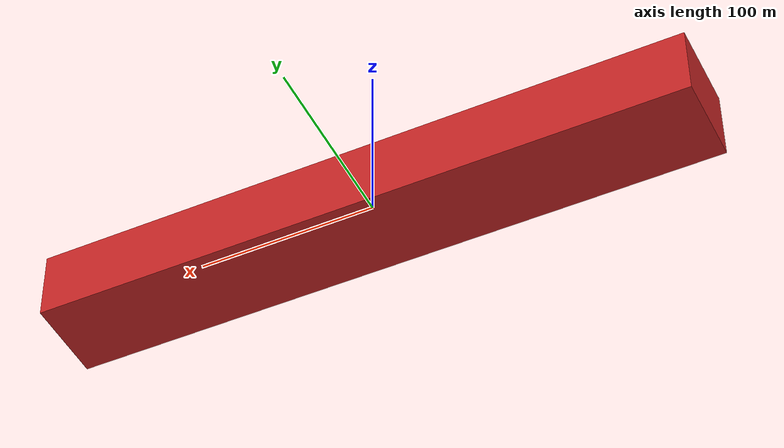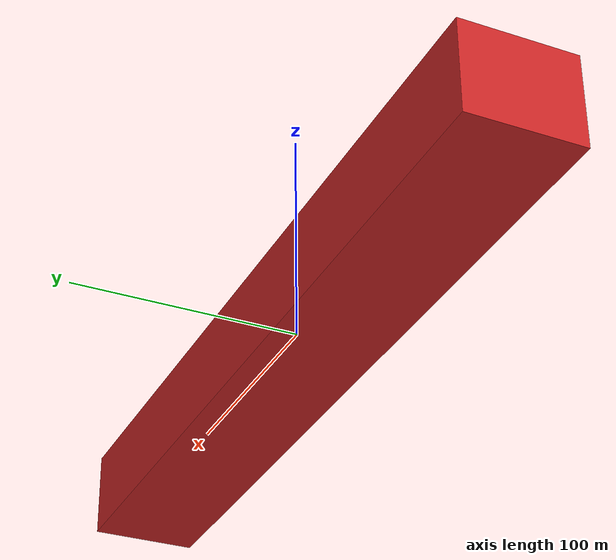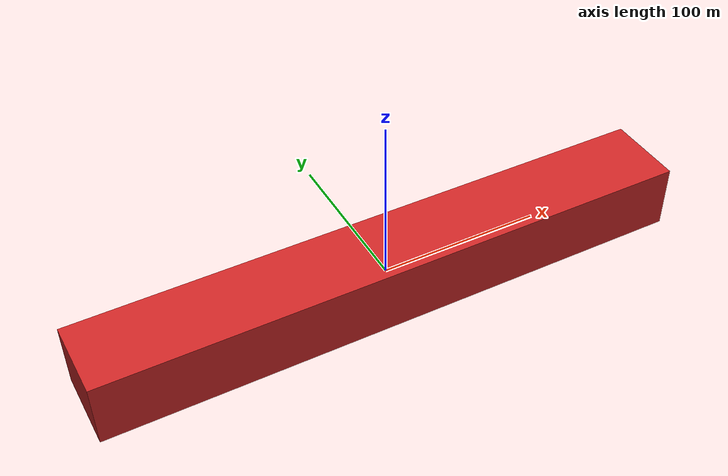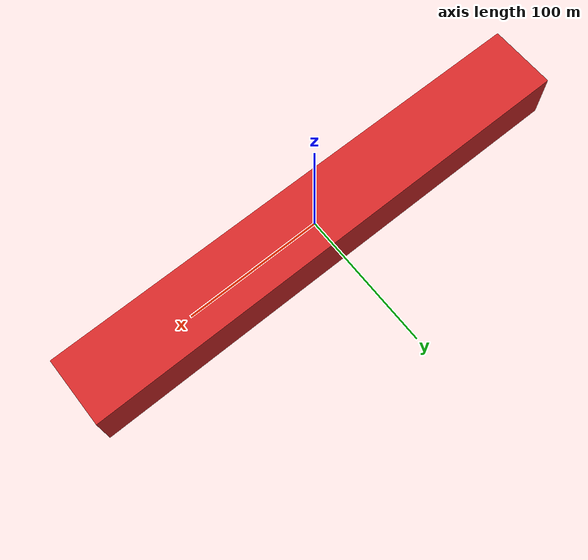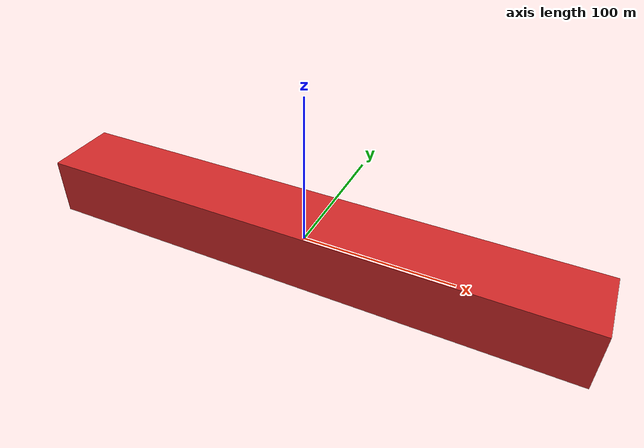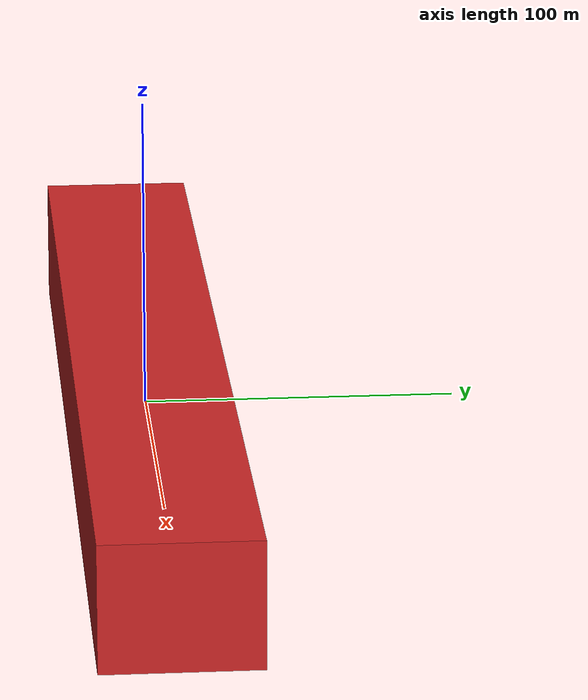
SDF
<?xml version='1.0'?>
<sdf version='1.7'>
  <model name='box4'>
    <link name='link_0'>
        <inertial>
            <mass>0</mass>
            <inertia>
            <ixx>0</ixx>
            <ixy>0</ixy>
            <ixz>0</ixz>
            <iyy>0</iyy>
            <iyz>0</iyz>
            <izz>0</izz>
            </inertia>
        </inertial>
        <pose>0 0 0 0 0 0</pose>
        <visual name='visual'>
            <geometry>
                <box>
                    <size>366 49 40</size>
                </box>
            </geometry>
            <material>
            <lighting>1</lighting>
            <script>
                <uri>file://media/materials/scripts/gazebo.material</uri>
                <name>Gazebo/Red</name>
            </script>
            <shader type='pixel'/>
            </material>
            <transparency>0</transparency>
            <cast_shadows>1</cast_shadows>
        </visual>
        <collision name='collision'>
            <geometry>
                <box>
                    <size>1.5 1.5 4</size>
                </box>
            </geometry>
        </collision>
    </link>
    <static>1</static>
    <allow_auto_disable>1</allow_auto_disable>
  </model>
</sdf>
